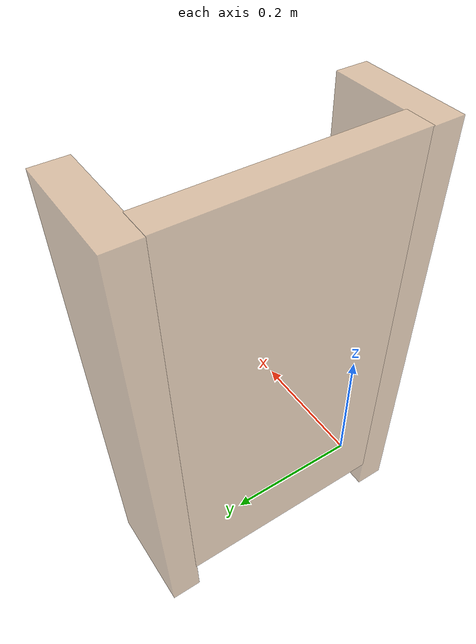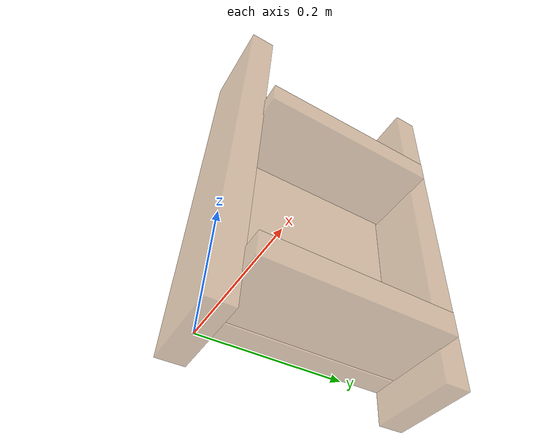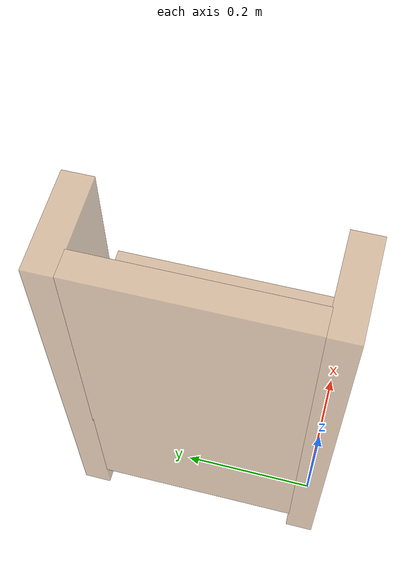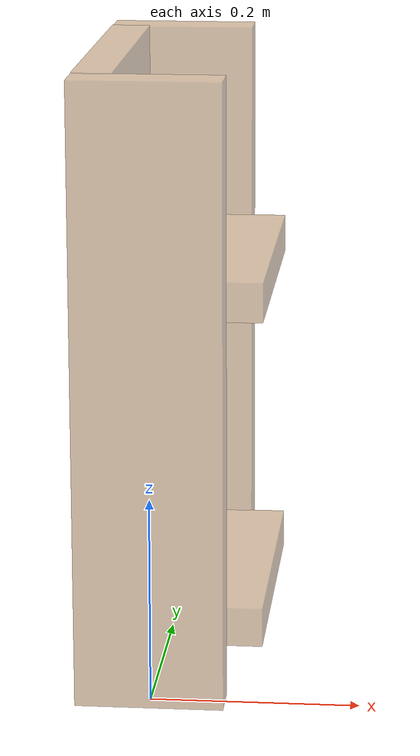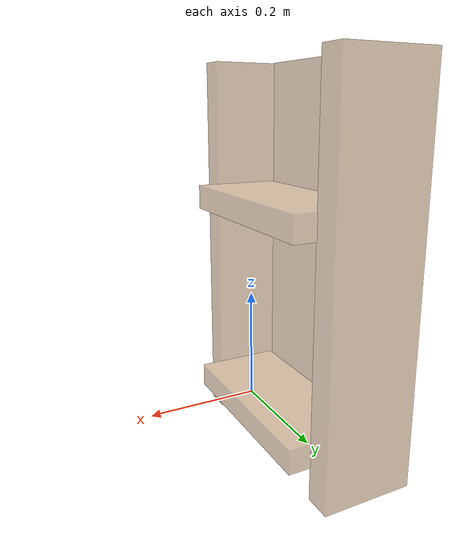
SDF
<?xml version="1.0" ?>
<sdf version="1.5">
  <model name="clue_bookcase_ghost">
    <static>true</static>
    <link name="bookcase">

    <collision name='base_collision'>
      <pose>0 0 0.30 0 0 0</pose>
        <geometry>
          <box>
            <size>0.14224 0.04094 0.60198</size>
          </box>
        </geometry>
    </collision>

      <visual name="side_1">
        <transparency>0.5</transparency>
        <pose>0 0 0.30 0 0 0</pose>
        <geometry>
          <box>
            <size>0.14224 0.04094 0.60198</size>
          </box>
        </geometry>
        <material>
          <script>
            <uri>model://clue_bookcase_ghost/materials/scripts</uri>
            <uri>model://clue_bookcase_ghost/materials/textures</uri>
            <name>Wood</name>
          </script>
        </material>
      </visual>

      <visual name="side_2">
        <transparency>0.5</transparency>
        <pose>-0 0.33655 0.30 0 0 0</pose>
        <geometry>
          <box>
            <size>0.14224 0.04094 0.60198</size>
          </box>
        </geometry>
        <material>
          <script>
            <uri>model://clue_bookcase_ghost/materials/scripts</uri>
            <uri>model://clue_bookcase_ghost/materials/textures</uri>
            <name>Wood</name>
          </script>
        </material>
      </visual>

      <visual name="back">
        <transparency>0.5</transparency>
        <pose>-0.05207 0.16827 0.325755 0 0 0</pose>
        <geometry>
          <box>
            <size>0.0381 0.29845 0.55245</size>
          </box>
        </geometry>
        <material>
          <script>
            <uri>model://clue_bookcase_ghost/materials/scripts</uri>
            <uri>model://clue_bookcase_ghost/materials/textures</uri>
            <name>Wood</name>
          </script>
        </material>
      </visual>

      <visual name="shelf_1">
        <transparency>0.5</transparency>
        <pose>0.0381 0.16827 0.06858 0 0 0</pose>
        <geometry>
          <box>
            <size>0.13462 0.29845 0.0381</size>
          </box>
        </geometry>
        <material>
          <script>
            <uri>model://clue_bookcase_ghost/materials/scripts</uri>
            <uri>model://clue_bookcase_ghost/materials/textures</uri>
            <name>Wood</name>
          </script>
        </material>
      </visual>

      <visual name="shelf_2">
        <transparency>0.5</transparency>
        <pose>0.0381 0.16827 0.38862 0 0 0</pose>
        <geometry>
          <box>
            <size>0.13462 0.29845 0.0381</size>
          </box>
        </geometry>
        <material>
          <script>
            <uri>model://clue_bookcase_ghost/materials/scripts</uri>
            <uri>model://clue_bookcase_ghost/materials/textures</uri>
            <name>Wood</name>
          </script>
        </material>
      </visual>
    </link>

  </model>
</sdf>
